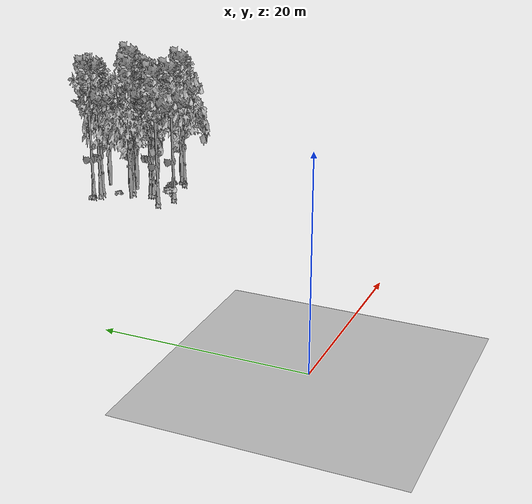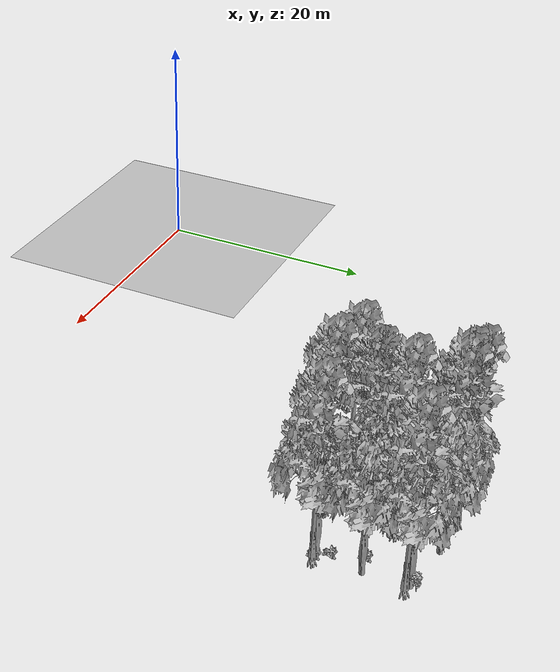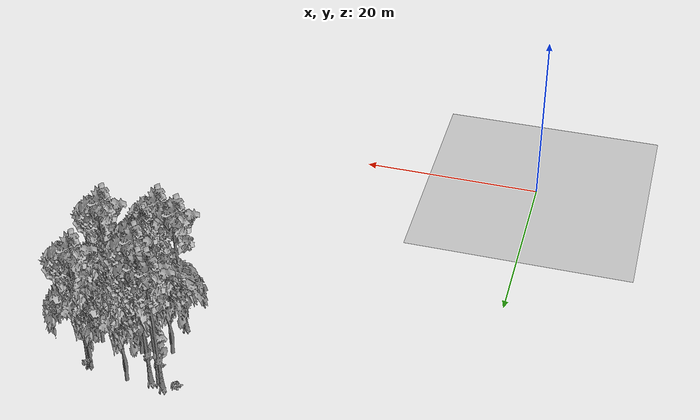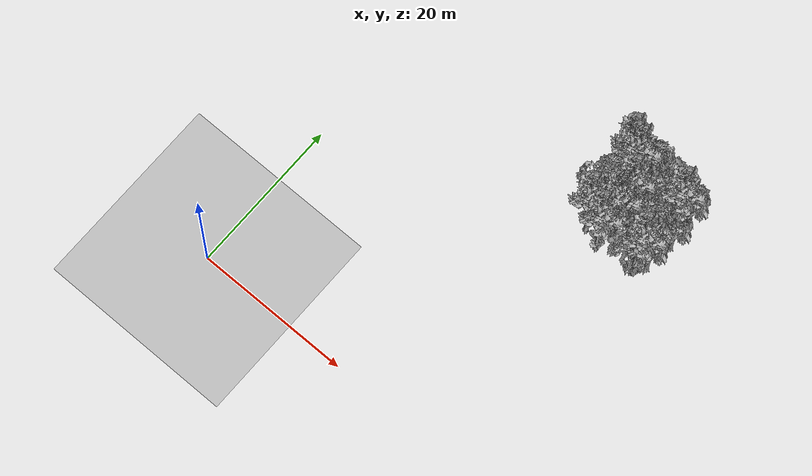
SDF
<sdf version="1.7">
 <world name="default">
  <model name="ground_plane">
   <static>1</static>
   <link name="link">
    <collision name="collision">
     <pose>-50 0 0 0 -0 0</pose>
     <geometry><plane><normal>0 0 1</normal><size>80 80</size></plane></geometry>
     <surface><contact><ode><min_depth>0.01</min_depth><max_vel>0</max_vel></ode></contact></surface>
    </collision>
    <visual name="grass">
     <cast_shadows>0</cast_shadows>
     <geometry>
      <mesh>
       <scale>0.46714285714285714 0.46714285714285714 0.1</scale>
       <uri>file://grass_plane/meshes/grass_plane.dae</uri>
      </mesh>
     </geometry>
    </visual>
   </link>
  </model>
  <model name="Tree 0">
   <static>1</static>
   <pose>30.91017625641861 31.21281964116895 0 1.57079 -0 0</pose>
   <link name="link">
    <collision name="collision">
     <geometry><mesh><scale>3.5 5 3.5</scale><uri>model://tree_9/meshes/tree_9.obj</uri></mesh></geometry>
    </collision>
    <visual name="visual">
     <geometry><mesh><scale>3.5 5 3.5</scale><uri>model://tree_9/meshes/tree_9.obj</uri></mesh></geometry>
    </visual>
   </link>
  </model>
  <model name="Tree 32">
   <static>1</static>
   <pose>37.962168871900204 38.69811637909113 0 1.57079 -0 0</pose>
   <link name="link">
    <collision name="collision">
     <geometry><mesh><scale>3.5 5 3.5</scale><uri>model://tree_2/meshes/tree_2.obj</uri></mesh></geometry>
    </collision>
    <visual name="visual">
     <geometry><mesh><scale>3.5 5 3.5</scale><uri>model://tree_2/meshes/tree_2.obj</uri></mesh></geometry>
    </visual>
   </link>
  </model>
  <model name="Tree 58">
   <static>1</static>
   <pose>30.10057045790755 39.67144194917678 0 1.57079 -0 0</pose>
   <link name="link">
    <collision name="collision">
     <geometry><mesh><scale>3.5 5 3.5</scale><uri>model://tree_9/meshes/tree_9.obj</uri></mesh></geometry>
    </collision>
    <visual name="visual">
     <geometry><mesh><scale>3.5 5 3.5</scale><uri>model://tree_9/meshes/tree_9.obj</uri></mesh></geometry>
    </visual>
   </link>
  </model>
  <model name="Tree 90">
   <static>1</static>
   <pose>33.758626262886764 39.4976839244416 0 1.57079 -0 0</pose>
   <link name="link">
    <collision name="collision">
     <geometry><mesh><scale>3.5 5 3.5</scale><uri>model://tree_2/meshes/tree_2.obj</uri></mesh></geometry>
    </collision>
    <visual name="visual">
     <geometry><mesh><scale>3.5 5 3.5</scale><uri>model://tree_2/meshes/tree_2.obj</uri></mesh></geometry>
    </visual>
   </link>
  </model>
  <model name="Tree 161">
   <static>1</static>
   <pose>30.697997029694278 39.02899211856524 0 1.57079 -0 0</pose>
   <link name="link">
    <collision name="collision">
     <geometry><mesh><scale>3.5 5 3.5</scale><uri>model://tree_9/meshes/tree_9.obj</uri></mesh></geometry>
    </collision>
    <visual name="visual">
     <geometry><mesh><scale>3.5 5 3.5</scale><uri>model://tree_9/meshes/tree_9.obj</uri></mesh></geometry>
    </visual>
   </link>
  </model>
  <model name="Tree 204">
   <static>1</static>
   <pose>33.37740205900289 33.18077387784027 0 1.57079 -0 0</pose>
   <link name="link">
    <collision name="collision">
     <geometry><mesh><scale>3.5 5 3.5</scale><uri>model://tree_9/meshes/tree_9.obj</uri></mesh></geometry>
    </collision>
    <visual name="visual">
     <geometry><mesh><scale>3.5 5 3.5</scale><uri>model://tree_9/meshes/tree_9.obj</uri></mesh></geometry>
    </visual>
   </link>
  </model>
  <model name="Tree 217">
   <static>1</static>
   <pose>33.78539045740254 35.69283534779963 0 1.57079 -0 0</pose>
   <link name="link">
    <collision name="collision">
     <geometry><mesh><scale>3.5 5 3.5</scale><uri>model://tree_2/meshes/tree_2.obj</uri></mesh></geometry>
    </collision>
    <visual name="visual">
     <geometry><mesh><scale>3.5 5 3.5</scale><uri>model://tree_2/meshes/tree_2.obj</uri></mesh></geometry>
    </visual>
   </link>
  </model>
  <model name="Tree 260">
   <static>1</static>
   <pose>33.19883528764748 30.26667423545092 0 1.57079 -0 0</pose>
   <link name="link">
    <collision name="collision">
     <geometry><mesh><scale>3.5 5 3.5</scale><uri>model://tree_9/meshes/tree_9.obj</uri></mesh></geometry>
    </collision>
    <visual name="visual">
     <geometry><mesh><scale>3.5 5 3.5</scale><uri>model://tree_9/meshes/tree_9.obj</uri></mesh></geometry>
    </visual>
   </link>
  </model>
  <model name="Tree 267">
   <static>1</static>
   <pose>37.743555098745446 31.5517562766686 0 1.57079 -0 0</pose>
   <link name="link">
    <collision name="collision">
     <geometry><mesh><scale>3.5 5 3.5</scale><uri>model://tree_2/meshes/tree_2.obj</uri></mesh></geometry>
    </collision>
    <visual name="visual">
     <geometry><mesh><scale>3.5 5 3.5</scale><uri>model://tree_2/meshes/tree_2.obj</uri></mesh></geometry>
    </visual>
   </link>
  </model>
  <model name="Tree 291">
   <static>1</static>
   <pose>33.25506680879346 35.888702972618646 0 1.57079 -0 0</pose>
   <link name="link">
    <collision name="collision">
     <geometry><mesh><scale>3.5 5 3.5</scale><uri>model://tree_9/meshes/tree_9.obj</uri></mesh></geometry>
    </collision>
    <visual name="visual">
     <geometry><mesh><scale>3.5 5 3.5</scale><uri>model://tree_9/meshes/tree_9.obj</uri></mesh></geometry>
    </visual>
   </link>
  </model>
  <model name="Tree 317">
   <static>1</static>
   <pose>30.793197158376458 34.8640059948186 0 1.57079 -0 0</pose>
   <link name="link">
    <collision name="collision">
     <geometry><mesh><scale>3.5 5 3.5</scale><uri>model://tree_2/meshes/tree_2.obj</uri></mesh></geometry>
    </collision>
    <visual name="visual">
     <geometry><mesh><scale>3.5 5 3.5</scale><uri>model://tree_2/meshes/tree_2.obj</uri></mesh></geometry>
    </visual>
   </link>
  </model>
  <model name="Tree 352">
   <static>1</static>
   <pose>33.38201347207813 33.536024384746355 0 1.57079 -0 0</pose>
   <link name="link">
    <collision name="collision">
     <geometry><mesh><scale>3.5 5 3.5</scale><uri>model://tree_9/meshes/tree_9.obj</uri></mesh></geometry>
    </collision>
    <visual name="visual">
     <geometry><mesh><scale>3.5 5 3.5</scale><uri>model://tree_9/meshes/tree_9.obj</uri></mesh></geometry>
    </visual>
   </link>
  </model>
  <model name="Tree 473">
   <static>1</static>
   <pose>31.48898554912691 39.201114976737486 0 1.57079 -0 0</pose>
   <link name="link">
    <collision name="collision">
     <geometry><mesh><scale>3.5 5 3.5</scale><uri>model://tree_9/meshes/tree_9.obj</uri></mesh></geometry>
    </collision>
    <visual name="visual">
     <geometry><mesh><scale>3.5 5 3.5</scale><uri>model://tree_9/meshes/tree_9.obj</uri></mesh></geometry>
    </visual>
   </link>
  </model>
  <model name="Tree 572">
   <static>1</static>
   <pose>38.235987048100355 35.22114927777112 0 1.57079 -0 0</pose>
   <link name="link">
    <collision name="collision">
     <geometry><mesh><scale>3.5 5 3.5</scale><uri>model://tree_2/meshes/tree_2.obj</uri></mesh></geometry>
    </collision>
    <visual name="visual">
     <geometry><mesh><scale>3.5 5 3.5</scale><uri>model://tree_2/meshes/tree_2.obj</uri></mesh></geometry>
    </visual>
   </link>
  </model>
  <model name="Tree 578">
   <static>1</static>
   <pose>38.45502092037117 31.501452773228408 0 1.57079 -0 0</pose>
   <link name="link">
    <collision name="collision">
     <geometry><mesh><scale>3.5 5 3.5</scale><uri>model://tree_9/meshes/tree_9.obj</uri></mesh></geometry>
    </collision>
    <visual name="visual">
     <geometry><mesh><scale>3.5 5 3.5</scale><uri>model://tree_9/meshes/tree_9.obj</uri></mesh></geometry>
    </visual>
   </link>
  </model>
  <model name="Tree 591">
   <static>1</static>
   <pose>38.40497008892133 38.4687822277718 0 1.57079 -0 0</pose>
   <link name="link">
    <collision name="collision">
     <geometry><mesh><scale>3.5 5 3.5</scale><uri>model://tree_9/meshes/tree_9.obj</uri></mesh></geometry>
    </collision>
    <visual name="visual">
     <geometry><mesh><scale>3.5 5 3.5</scale><uri>model://tree_9/meshes/tree_9.obj</uri></mesh></geometry>
    </visual>
   </link>
  </model>
  <model name="Bush 207">
   <static>1</static>
   <pose>28.863807218268562 39.078225902922256 0 1.57079 -0 0</pose>
   <link name="link">
    <collision name="collision">
     <geometry><mesh><scale>2 2 2</scale><uri>model://bush_2/meshes/bush_2.obj</uri></mesh></geometry>
     <surface><contact><collide_without_contact>false</collide_without_contact></contact></surface>
    </collision>
    <visual name="visual">
     <geometry><mesh><scale>2 2 2</scale><uri>model://bush_2/meshes/bush_2.obj</uri></mesh></geometry>
    </visual>
   </link>
  </model>
  <model name="Bush 265">
   <static>1</static>
   <pose>38.18919895093478 39.237721742923355 0 1.57079 -0 0</pose>
   <link name="link">
    <collision name="collision">
     <geometry><mesh><scale>2 2 2</scale><uri>model://bush_5/meshes/bush_5.obj</uri></mesh></geometry>
     <surface><contact><collide_without_contact>false</collide_without_contact></contact></surface>
    </collision>
    <visual name="visual">
     <geometry><mesh><scale>2 2 2</scale><uri>model://bush_5/meshes/bush_5.obj</uri></mesh></geometry>
    </visual>
   </link>
  </model>
  <model name="Bush 307">
   <static>1</static>
   <pose>36.497753546574316 34.866885913084516 0 1.57079 -0 0</pose>
   <link name="link">
    <collision name="collision">
     <geometry><mesh><scale>2 2 2</scale><uri>model://bush_2/meshes/bush_2.obj</uri></mesh></geometry>
     <surface><contact><collide_without_contact>false</collide_without_contact></contact></surface>
    </collision>
    <visual name="visual">
     <geometry><mesh><scale>2 2 2</scale><uri>model://bush_2/meshes/bush_2.obj</uri></mesh></geometry>
    </visual>
   </link>
  </model>
  <model name="Bush 308">
   <static>1</static>
   <pose>37.348770548671865 32.45894933363432 0 1.57079 -0 0</pose>
   <link name="link">
    <collision name="collision">
     <geometry><mesh><scale>2 2 2</scale><uri>model://bush_2/meshes/bush_2.obj</uri></mesh></geometry>
     <surface><contact><collide_without_contact>false</collide_without_contact></contact></surface>
    </collision>
    <visual name="visual">
     <geometry><mesh><scale>2 2 2</scale><uri>model://bush_2/meshes/bush_2.obj</uri></mesh></geometry>
    </visual>
   </link>
  </model>
  <model name="Bush 336">
   <static>1</static>
   <pose>33.01134973945025 30.525160419752638 0 1.57079 -0 0</pose>
   <link name="link">
    <collision name="collision">
     <geometry><mesh><scale>2 2 2</scale><uri>model://bush_1/meshes/bush_1.obj</uri></mesh></geometry>
     <surface><contact><collide_without_contact>false</collide_without_contact></contact></surface>
    </collision>
    <visual name="visual">
     <geometry><mesh><scale>2 2 2</scale><uri>model://bush_1/meshes/bush_1.obj</uri></mesh></geometry>
    </visual>
   </link>
  </model>
  <model name="Bush 487">
   <static>1</static>
   <pose>37.949926080479756 31.456186927602474 0 1.57079 -0 0</pose>
   <link name="link">
    <collision name="collision">
     <geometry><mesh><scale>2 2 2</scale><uri>model://bush_2/meshes/bush_2.obj</uri></mesh></geometry>
     <surface><contact><collide_without_contact>false</collide_without_contact></contact></surface>
    </collision>
    <visual name="visual">
     <geometry><mesh><scale>2 2 2</scale><uri>model://bush_2/meshes/bush_2.obj</uri></mesh></geometry>
    </visual>
   </link>
  </model>
  <model name="Bush 560">
   <static>1</static>
   <pose>31.49386455846677 36.94893721111082 0 1.57079 -0 0</pose>
   <link name="link">
    <collision name="collision">
     <geometry><mesh><scale>2 2 2</scale><uri>model://bush_2/meshes/bush_2.obj</uri></mesh></geometry>
     <surface><contact><collide_without_contact>false</collide_without_contact></contact></surface>
    </collision>
    <visual name="visual">
     <geometry><mesh><scale>2 2 2</scale><uri>model://bush_2/meshes/bush_2.obj</uri></mesh></geometry>
    </visual>
   </link>
  </model>
 </world>
</sdf>
